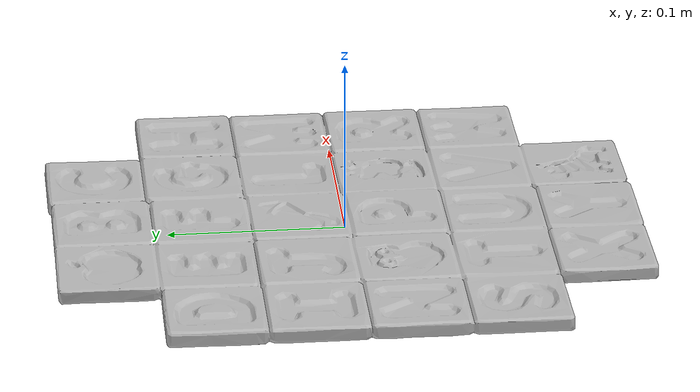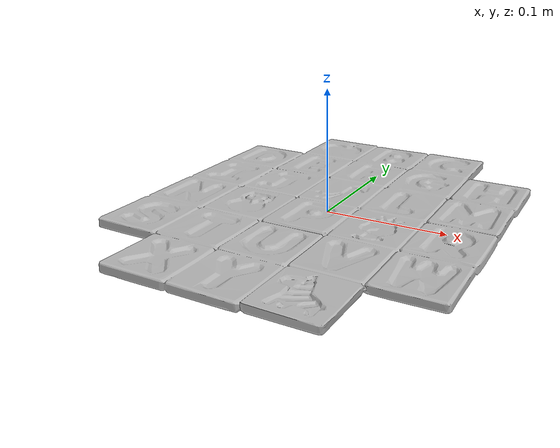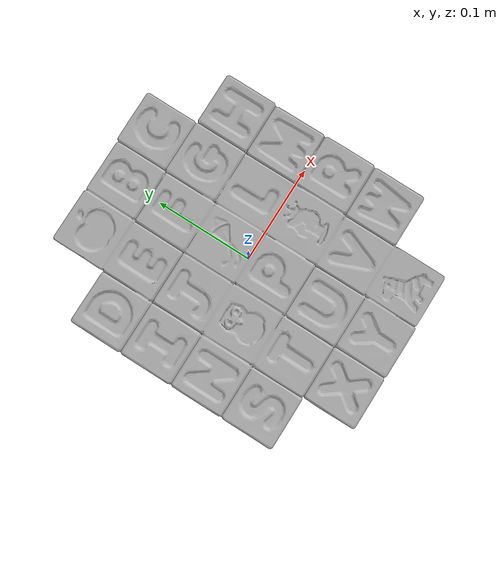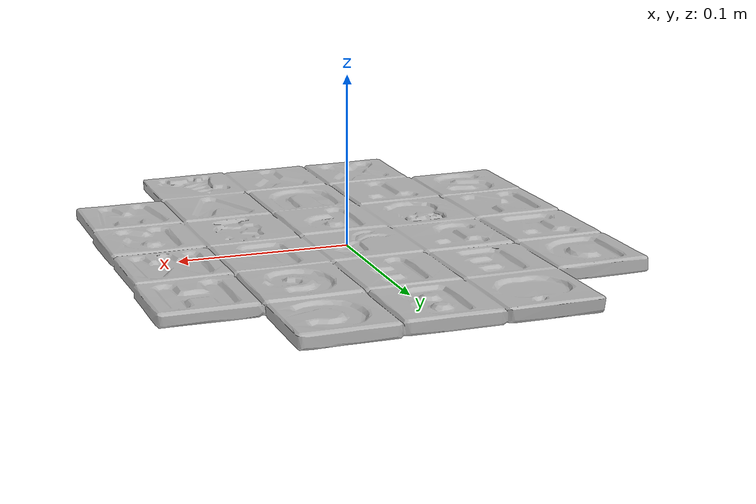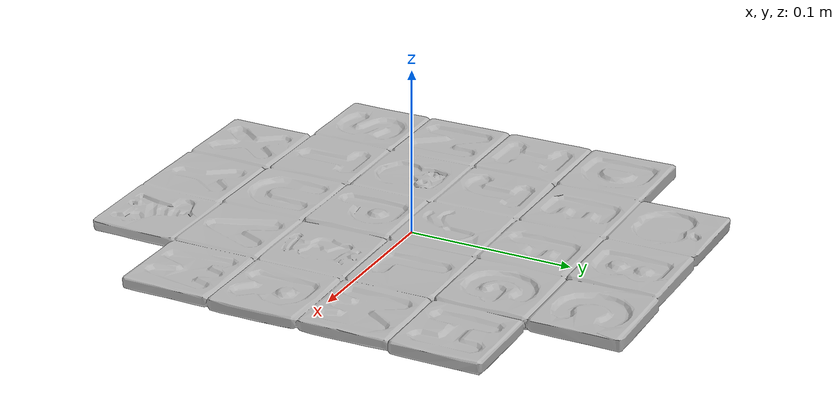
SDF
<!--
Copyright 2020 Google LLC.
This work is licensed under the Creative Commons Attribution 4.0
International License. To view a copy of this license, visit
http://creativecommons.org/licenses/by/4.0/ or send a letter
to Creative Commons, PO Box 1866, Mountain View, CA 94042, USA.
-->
<?xml version="1.0" ?>
<sdf version="1.6">
  <model name="ALPHABET_AZ_GRADIENT_WQb1ufEycSj">
    <link name="link_0">
      <visual name="visual">
        <geometry>
          <mesh>
            <uri>meshes/model.obj</uri>
          </mesh>
        </geometry>
      </visual>
      <collision name="collision_0">
        <geometry>
          <mesh>
            <uri>meshes/model.obj</uri>
          </mesh>
        </geometry>
      </collision>
    </link>
  </model>
</sdf>
